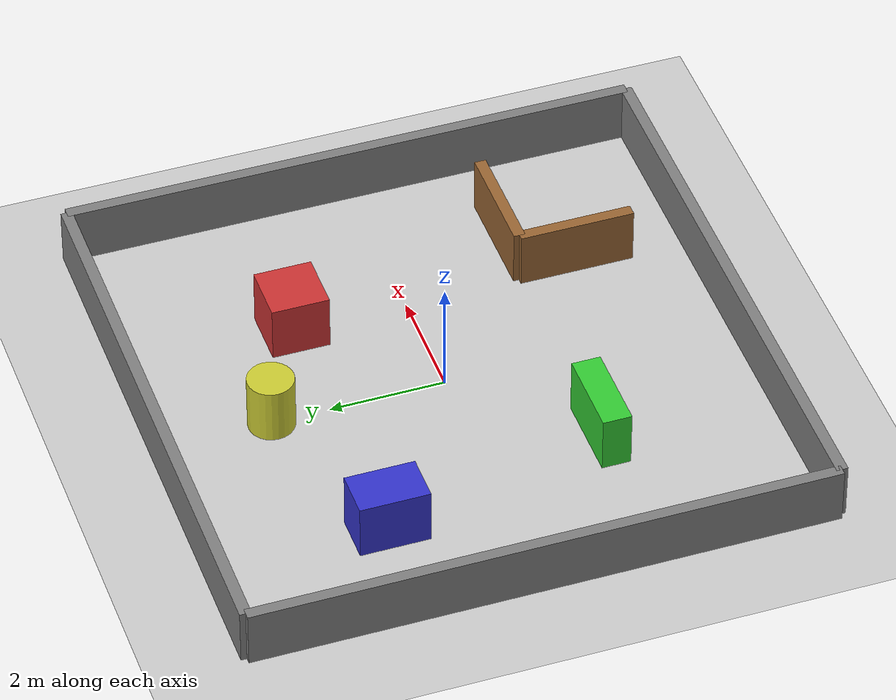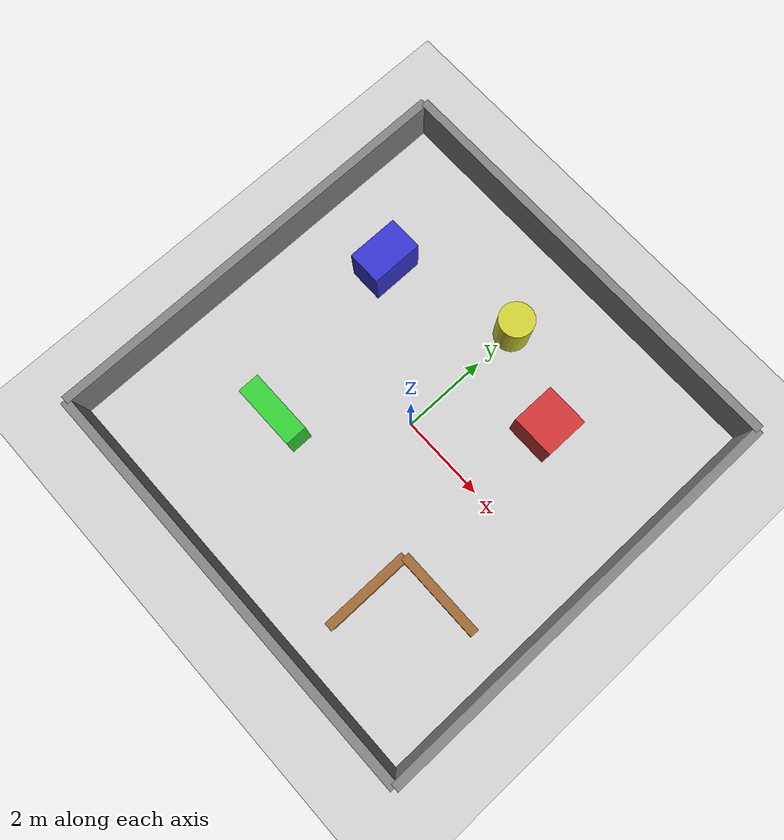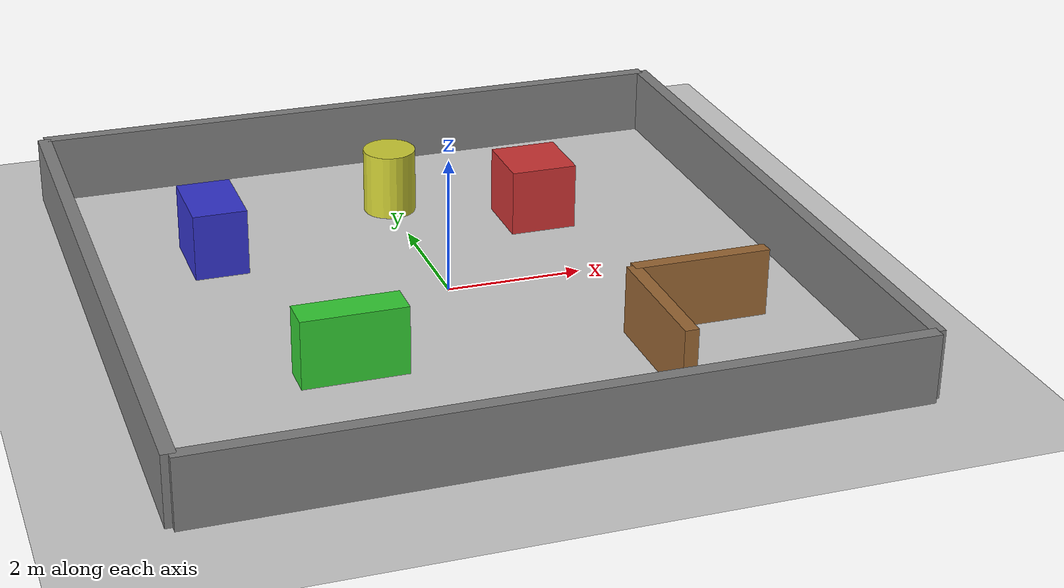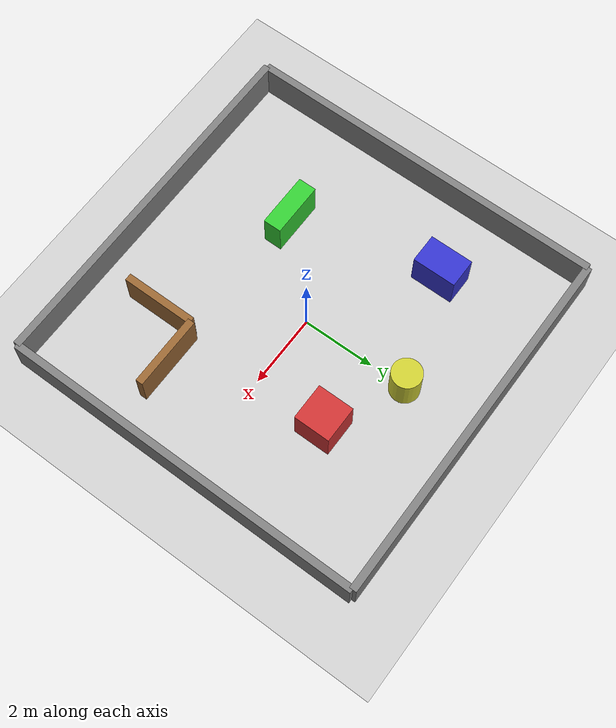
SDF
<?xml version="1.0" ?>
<sdf version="1.8">
  <world name="slam_test">
    <!-- Physics -->
    <physics name="1ms" type="ignored">
      <max_step_size>0.001</max_step_size>
      <real_time_factor>1.0</real_time_factor>
    </physics>

    <!-- Plugins required for simulation -->
    <plugin filename="gz-sim-physics-system" name="gz::sim::systems::Physics"/>
    <plugin filename="gz-sim-user-commands-system" name="gz::sim::systems::UserCommands"/>
    <plugin filename="gz-sim-scene-broadcaster-system" name="gz::sim::systems::SceneBroadcaster"/>
    <plugin filename="gz-sim-contact-system" name="gz::sim::systems::Contact"/>
    <plugin filename="gz-sim-imu-system" name="gz::sim::systems::Imu"/>
    <plugin filename="gz-sim-sensors-system" name="gz::sim::systems::Sensors">
      <render_engine>ogre2</render_engine>
    </plugin>

    <!-- Lighting -->
    <light type="directional" name="sun">
      <cast_shadows>true</cast_shadows>
      <pose>0 0 10 0 0 0</pose>
      <diffuse>0.8 0.8 0.8 1</diffuse>
      <specular>0.2 0.2 0.2 1</specular>
      <direction>-0.5 0.1 -0.9</direction>
    </light>

    <!-- Ground plane -->
    <model name="ground_plane">
      <static>true</static>
      <link name="link">
        <collision name="collision">
          <geometry>
            <plane>
              <normal>0 0 1</normal>
              <size>100 100</size>
            </plane>
          </geometry>
        </collision>
        <visual name="visual">
          <geometry>
            <plane>
              <normal>0 0 1</normal>
              <size>100 100</size>
            </plane>
          </geometry>
          <material>
            <ambient>0.8 0.8 0.8 1</ambient>
            <diffuse>0.8 0.8 0.8 1</diffuse>
          </material>
        </visual>
      </link>
    </model>

    <!-- Outer walls (10m x 10m room) -->
    <!-- North wall -->
    <model name="wall_north">
      <static>true</static>
      <pose>0 5 0.5 0 0 0</pose>
      <link name="link">
        <collision name="collision">
          <geometry><box><size>10 0.2 1</size></box></geometry>
        </collision>
        <visual name="visual">
          <geometry><box><size>10 0.2 1</size></box></geometry>
          <material><ambient>0.5 0.5 0.5 1</ambient></material>
        </visual>
      </link>
    </model>

    <!-- South wall -->
    <model name="wall_south">
      <static>true</static>
      <pose>0 -5 0.5 0 0 0</pose>
      <link name="link">
        <collision name="collision">
          <geometry><box><size>10 0.2 1</size></box></geometry>
        </collision>
        <visual name="visual">
          <geometry><box><size>10 0.2 1</size></box></geometry>
          <material><ambient>0.5 0.5 0.5 1</ambient></material>
        </visual>
      </link>
    </model>

    <!-- East wall -->
    <model name="wall_east">
      <static>true</static>
      <pose>5 0 0.5 0 0 0</pose>
      <link name="link">
        <collision name="collision">
          <geometry><box><size>0.2 10 1</size></box></geometry>
        </collision>
        <visual name="visual">
          <geometry><box><size>0.2 10 1</size></box></geometry>
          <material><ambient>0.5 0.5 0.5 1</ambient></material>
        </visual>
      </link>
    </model>

    <!-- West wall -->
    <model name="wall_west">
      <static>true</static>
      <pose>-5 0 0.5 0 0 0</pose>
      <link name="link">
        <collision name="collision">
          <geometry><box><size>0.2 10 1</size></box></geometry>
        </collision>
        <visual name="visual">
          <geometry><box><size>0.2 10 1</size></box></geometry>
          <material><ambient>0.5 0.5 0.5 1</ambient></material>
        </visual>
      </link>
    </model>

    <!-- Interior obstacles -->
    <!-- Box 1 -->
    <model name="box1">
      <static>true</static>
      <pose>2 2 0.5 0 0 0</pose>
      <link name="link">
        <collision name="collision">
          <geometry><box><size>1 1 1</size></box></geometry>
        </collision>
        <visual name="visual">
          <geometry><box><size>1 1 1</size></box></geometry>
          <material><ambient>0.8 0.2 0.2 1</ambient></material>
        </visual>
      </link>
    </model>

    <!-- Box 2 -->
    <model name="box2">
      <static>true</static>
      <pose>-2 -2 0.5 0 0 0</pose>
      <link name="link">
        <collision name="collision">
          <geometry><box><size>1.5 0.5 1</size></box></geometry>
        </collision>
        <visual name="visual">
          <geometry><box><size>1.5 0.5 1</size></box></geometry>
          <material><ambient>0.2 0.8 0.2 1</ambient></material>
        </visual>
      </link>
    </model>

    <!-- Box 3 -->
    <model name="box3">
      <static>true</static>
      <pose>-3 2 0.5 0 0 0</pose>
      <link name="link">
        <collision name="collision">
          <geometry><box><size>0.8 1.2 1</size></box></geometry>
        </collision>
        <visual name="visual">
          <geometry><box><size>0.8 1.2 1</size></box></geometry>
          <material><ambient>0.2 0.2 0.8 1</ambient></material>
        </visual>
      </link>
    </model>

    <!-- L-shaped wall -->
    <model name="l_wall_1">
      <static>true</static>
      <pose>3 -2 0.5 0 0 0</pose>
      <link name="link">
        <collision name="collision">
          <geometry><box><size>2 0.2 1</size></box></geometry>
        </collision>
        <visual name="visual">
          <geometry><box><size>2 0.2 1</size></box></geometry>
          <material><ambient>0.6 0.4 0.2 1</ambient></material>
        </visual>
      </link>
    </model>

    <model name="l_wall_2">
      <static>true</static>
      <pose>2 -3 0.5 0 0 0</pose>
      <link name="link">
        <collision name="collision">
          <geometry><box><size>0.2 2 1</size></box></geometry>
        </collision>
        <visual name="visual">
          <geometry><box><size>0.2 2 1</size></box></geometry>
          <material><ambient>0.6 0.4 0.2 1</ambient></material>
        </visual>
      </link>
    </model>

    <!-- Cylinder obstacle -->
    <model name="cylinder1">
      <static>true</static>
      <pose>0 3 0.5 0 0 0</pose>
      <link name="link">
        <collision name="collision">
          <geometry><cylinder><radius>0.4</radius><length>1</length></cylinder></geometry>
        </collision>
        <visual name="visual">
          <geometry><cylinder><radius>0.4</radius><length>1</length></cylinder></geometry>
          <material><ambient>0.8 0.8 0.2 1</ambient></material>
        </visual>
      </link>
    </model>

  </world>
</sdf>
